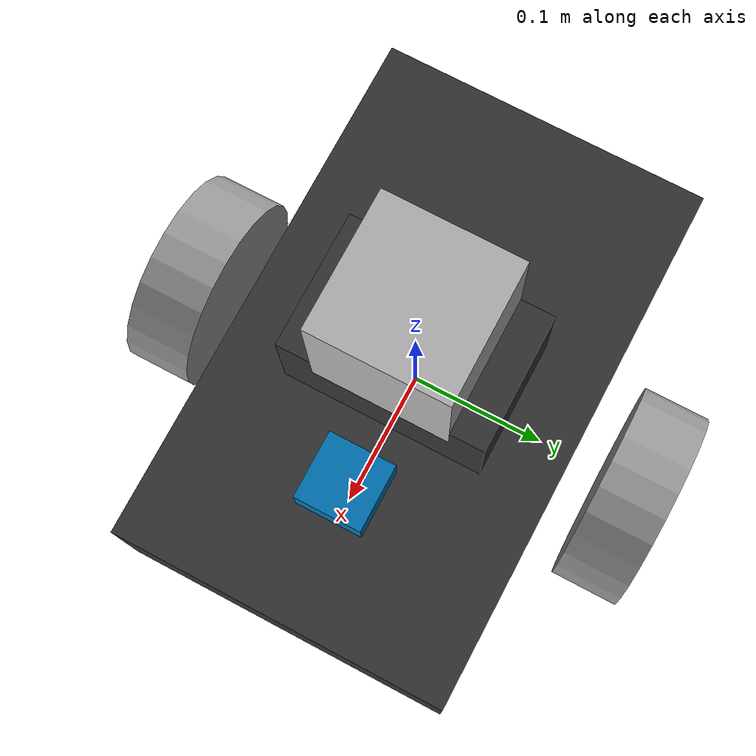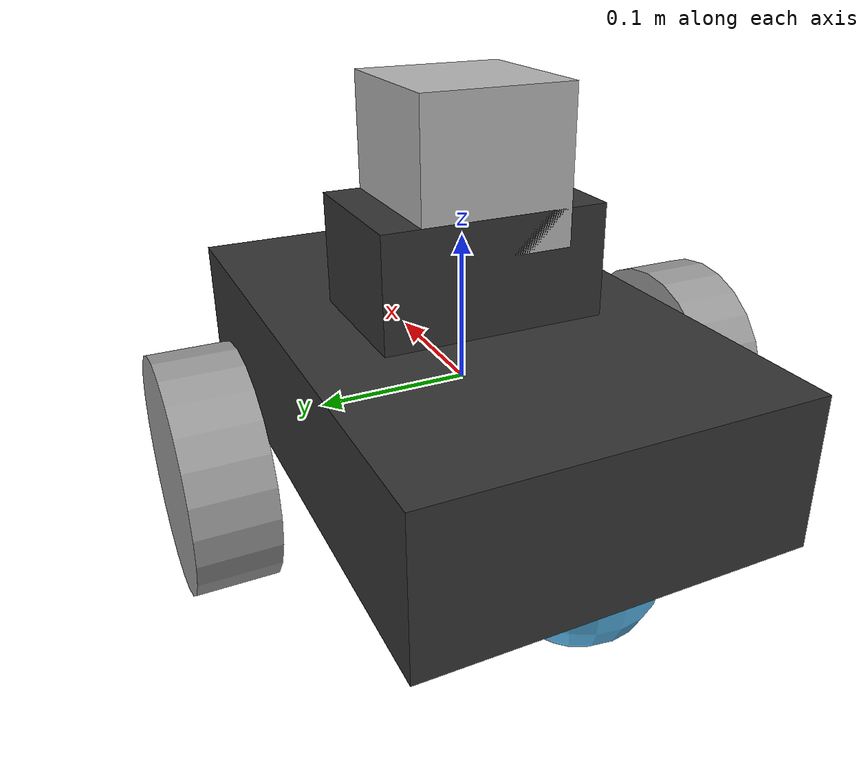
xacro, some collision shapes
<?xml version='1.0'?>

<robot name="udacity_bot_sebastian" xmlns:xacro="http://www.ros.org/wiki/xacro">

<!-- Include Gazebo plugins -->
<xacro:include filename="$(find slam_project)/urdf/udacity_bot_sebastian.gazebo"/>

<!-- Wheel Parameters -->
<xacro:property name="wheel_mass" value="5.0" />
<xacro:property name="wheel_radius" value="0.075" />
<xacro:property name="wheel_thickness" value="0.05" />

<!-- Body Parameters -->
<xacro:property name="chassis_mass" value="10.0" />
<xacro:property name="lidar_mount_mass" value="5.0" />

<!-- Materials -->
<material name="black">
    <color rgba="0.2 0.2 0.2 1"/>
</material>
<material name="gray">
    <color rgba="0.6 0.6 0.6 1"/>
</material>
<material name="red">
    <color rgba="0.8 0.0 0.0 1"/>
</material>

  <!-- ROBOT FOOTPRINT -->
  <link name="robot_footprint"></link>

  <joint name="robot_footprint_joint" type="fixed">
    <origin xyz="0 0 0" rpy="0 0 0" />
    <parent link="robot_footprint"/>
    <child link="chassis" />
  </joint>

  <!-- CHASSIS -->
  <link name='chassis'>
    <pose>0 0 0.1 0 0 0</pose>
    <inertial>
      <mass value="${chassis_mass}"/>
      <origin xyz="0.0 0 0" rpy=" 0 0 0"/>
      <inertia
          ixx="0.1" ixy="0" ixz="0"
          iyy="0.1" iyz="0"
          izz="0.1"
      />
    </inertial>
    <collision name='collision'>
      <origin xyz="0 0 0" rpy=" 0 0 0"/>
      <geometry>
        <box size="0.3 0.4 0.1"/>
      </geometry>
    </collision>
    <visual name='chassis_visual'>
      <origin xyz="0 0 0" rpy=" 0 0 0"/>
      <geometry>
        <box size="0.4 0.25 0.1"/>
      </geometry>
      <material name="black"/>
    </visual>

    <!-- CHASSIS/REAR CASTER -->
    <collision name='back_caster_collision'>
      <origin xyz="-0.15 0 -0.05" rpy=" 0 0 0"/>
      <geometry>
        <sphere radius="0.049"/>
      </geometry>
    </collision>

    <visual name='back_caster_visual'>
      <origin xyz="-0.15 0 -0.05" rpy=" 0 0 0"/>
      <geometry>
        <sphere radius="0.05"/>
      </geometry>
    </visual>

    <!-- CHASSIS/FRONT CASTER -->
    <collision name='front_caster_collision'>
      <origin xyz="0.15 0 -0.05" rpy=" 0 0 0"/>
      <geometry>
        <sphere radius="0.049"/>
      </geometry>
    </collision>

    <visual name='front_caster_visual'>
      <origin xyz="0.15 0 -0.05" rpy=" 0 0 0"/>
      <geometry>
        <sphere radius="0.05"/>
      </geometry>
    </visual>

  </link>

  <!-- LEFT FRONT WHEEL -->
  <link name='left_front_wheel'>
    <inertial>
      <mass value="${wheel_mass}"/>
      <origin xyz="0 0 0" rpy="0 ${pi/2} ${pi/2}"/>
      <inertia
          ixx="0.1" ixy="0" ixz="0"
          iyy="0.1" iyz="0"
          izz="0.1"
      />
    </inertial>
    <visual name='left_front_wheel_visual'>
      <origin xyz="0 0 0" rpy="0 ${pi/2} ${pi/2}"/>
      <geometry>
        <cylinder radius="${wheel_radius}" length="${wheel_thickness}"/>
      </geometry>
      <material name="gray"/>
    </visual>
    <collision name='left_front_wheel_collision'>
      <origin xyz="0 0 0" rpy="0 ${pi/2} ${pi/2}"/>
      <geometry>
        <cylinder radius="${wheel_radius-0.00001}" length="${wheel_thickness-0.00001}"/>
      </geometry>
    </collision>
  </link>
  <joint type="continuous" name="left_front_wheel_joint">
    <origin xyz="0.0 0.175 -0.025" rpy="0 0 0"/>
    <child link="left_front_wheel"/>
    <parent link="chassis"/>
    <axis xyz="0 1 0" rpy="0 0 0"/>
    <limit effort="10000" velocity="1000"/>
    <dynamics damping="1.0" friction="1.0"/>
  </joint>

  <!-- RIGHT FRONT WHEEL -->
  <link name='right_front_wheel'>
    <inertial>
      <mass value="${wheel_mass}"/>
      <origin xyz="0 0 0" rpy="0 ${pi/2} ${pi/2}"/>
      <inertia
          ixx="0.1" ixy="0" ixz="0"
          iyy="0.1" iyz="0"
          izz="0.1"
      />
    </inertial>
    <visual name='right_front_wheel_visual'>
      <origin xyz="0 0 0" rpy="0 ${pi/2} ${pi/2}"/>
      <geometry>
        <cylinder radius="${wheel_radius}" length="${wheel_thickness}"/>
      </geometry>
      <material name="gray"/>
    </visual>
    <collision name='right_front_wheel_collision'>
      <origin xyz="0 0 0" rpy="0 ${pi/2} ${pi/2}"/>
      <geometry>
        <cylinder radius="${wheel_radius-0.00001}" length="${wheel_thickness-0.00001}"/>
      </geometry>
    </collision>
  </link>
  <joint type="continuous" name="right_front_wheel_joint">
    <origin xyz="0.0 -0.175 -0.025" rpy="0 0 0"/>
    <child link="right_front_wheel"/>
    <parent link="chassis"/>
    <axis xyz="0 1 0" rpy="0 0 0"/>
    <limit effort="10000" velocity="1000"/>
    <dynamics damping="1.0" friction="1.0"/>
  </joint>

  <!-- CAMERA -->
  <link name='camera'>
    <inertial>
      <mass value="0.1"/>
      <origin xyz="0 0 0" rpy="0 0 0"/>
      <inertia
          ixx="1e-6" ixy="0" ixz="0"
          iyy="1e-6" iyz="0"
          izz="1e-6"
      />
    </inertial>
    <visual name='camera_visual'>
      <origin xyz="0 0 0" rpy="0 0 0"/>
      <geometry>
        <box size="0.05 0.05 0.05"/>
      </geometry>
    </visual>
    <collision name='camera_collision'>
      <origin xyz="0 0 0" rpy="0 0 0"/>
      <geometry>
        <box size="0.0499 0.0499 0.0499"/>
      </geometry>
      <material name="black"/>
    </collision>
  </link>

  <joint type="fixed" name="camera_joint">
    <origin xyz="0.1 0 0.05" rpy="0 0 0"/>
    <child link="camera"/>
    <parent link="chassis"/>
  </joint>

  <!-- OPTICAL FRAME: Workaround needed so depth cloud points in the right direction -->
  <joint name="camera_optical_joint" type="fixed">
    <origin xyz="0 0 0" rpy="${-pi/2} 0 ${-pi/2}"/>
    <parent link="camera"/>
    <child link="camera_link_optical"/>
  </joint>
  <link name="camera_link_optical">
  </link>
  <!-- END OPTICAL FRAME -->

  <!-- LIDAR -->
    <link name='lidar_mount'>
    <inertial>
      <mass value="${lidar_mount_mass}"/>
      <origin xyz="0 0 0" rpy="0 0 0"/>
      <inertia
          ixx="1e-3" ixy="0" ixz="0"
          iyy="1e-3" iyz="0"
          izz="1e-3"
      />
    </inertial>
    <visual name='lidar_mount_visual'>
      <origin xyz="0 0 0" rpy="0 0 0"/>
      <geometry>
        <box size="0.1 0.15 0.1"/>
      </geometry>
      <material name="black"/>
    </visual>
  </link>
  <joint type="fixed" name="lidar_mount_joint">
    <origin xyz="0.0 0 0.075" rpy="0 0 0"/>
    <child link="lidar_mount"/>
    <parent link="chassis"/>
  </joint>

  <link name='hokuyo'>
    <inertial>
      <mass value="0.1"/>
      <origin xyz="0 0 0" rpy="0 0 0"/>
      <inertia
          ixx="1e-6" ixy="0" ixz="0"
          iyy="1e-6" iyz="0"
          izz="1e-6"
      />
    </inertial>
    <visual name='hokuyo_visual'>
      <origin xyz="0 0 0" rpy="0 0 0"/>
      <geometry>
        <mesh filename="package://slam_project/meshes/hokuyo.dae"/>
      </geometry>
    </visual>
    <collision name='hokuyo_collision'>
      <origin xyz="0 0 0" rpy="0 0 0"/>
      <geometry>
        <box size="0.1 0.1 0.1"/>
      </geometry>
    </collision>
  </link>
  <joint type="fixed" name="hokuyo_joint">
    <origin xyz="0.0 0.0 0.075" rpy="0 0 0"/>
    <child link="hokuyo"/>
    <parent link="lidar_mount"/>
  </joint>

</robot>
